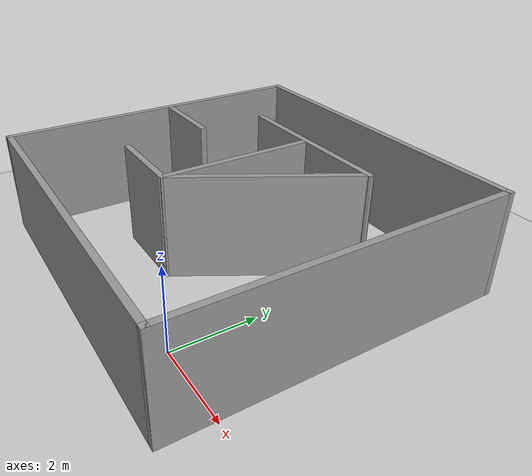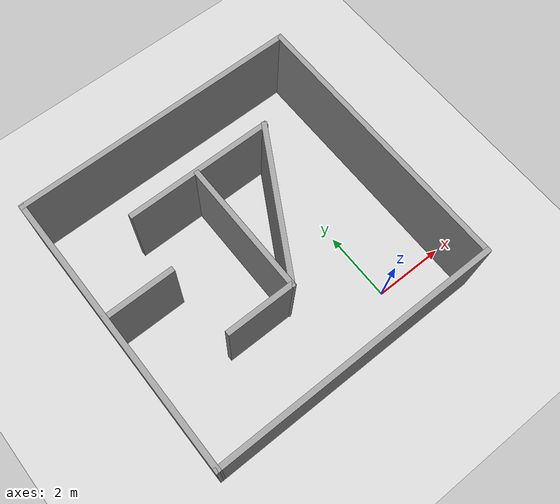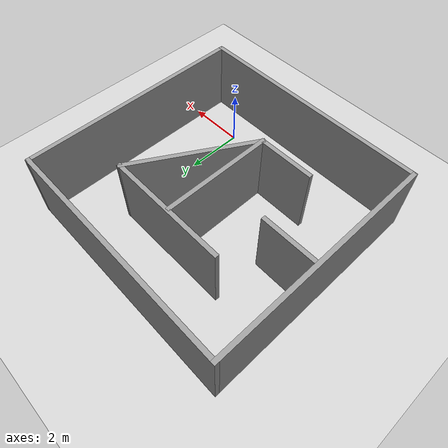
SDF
<sdf version="1.7">
 <world name="default">
  <light name="sun" type="directional">
   <pose>0 0 10 0 -0 0</pose>
   <diffuse>0.8 0.8 0.8 1</diffuse>
   <specular>0.2 0.2 0.2 1</specular>
   <attenuation>
    <range>1000</range>
    <constant>0.9</constant>
    <linear>0.01</linear>
    <quadratic>0.001</quadratic>
   </attenuation>
   <direction>-0.5 0.1 -0.9</direction>
   <spot><inner_angle>0</inner_angle><outer_angle>0</outer_angle><falloff>0</falloff></spot>
  </light>
  <model name="ground_plane">
   <static>1</static>
   <link name="link">
    <collision name="collision">
     <geometry><plane><normal>0 0 1</normal><size>100 100</size></plane></geometry>
     <surface>
      <contact><collide_bitmask>65535</collide_bitmask></contact>
      <friction><ode><mu>100</mu><mu2>50</mu2></ode></friction>
     </surface>
    </collision>
    <visual name="visual">
     <cast_shadows>0</cast_shadows>
     <geometry><plane><normal>0 0 1</normal><size>100 100</size></plane></geometry>
     <material>
      <script><uri>file://media/materials/scripts/gazebo.material</uri><name>Gazebo/Grey</name></script>
     </material>
    </visual>
   </link>
  </model>
  <gravity>0 0 -9.8</gravity>
  <magnetic_field>6e-06 2.3e-05 -4.2e-05</magnetic_field>
  <atmosphere type="adiabatic"/>
  <physics type="ode">
   <max_step_size>0.003</max_step_size>
   <real_time_factor>1</real_time_factor>
   <real_time_update_rate>1000</real_time_update_rate>
  </physics>
  <scene><ambient>0.4 0.4 0.4 1</ambient><background>0.7 0.7 0.7 1</background><shadows>1</shadows></scene>
  <spherical_coordinates>
   <surface_model>EARTH_WGS84</surface_model>
   <latitude_deg>0</latitude_deg>
   <longitude_deg>0</longitude_deg>
   <elevation>0</elevation>
   <heading_deg>0</heading_deg>
  </spherical_coordinates>
  <model name="placed_19_2">
   <pose>-2.19877 2.82374 0 0 -0 0</pose>
   <link name="Wall_0">
    <collision name="Wall_0_Collision">
     <geometry><box><size>8.25 0.15 2.5</size></box></geometry>
     <pose>0 0 1.25 0 -0 0</pose>
    </collision>
    <visual name="Wall_0_Visual">
     <pose>0 0 1.25 0 -0 0</pose>
     <geometry><box><size>8.25 0.15 2.5</size></box></geometry>
     <material>
      <script><uri>file://media/materials/scripts/gazebo.material</uri><name>Gazebo/Grey</name></script>
      <ambient>1 1 1 1</ambient>
     </material>
     <meta><layer>0</layer></meta>
    </visual>
    <pose>0 -3.925 0 0 -0 0</pose>
   </link>
   <link name="Wall_1">
    <collision name="Wall_1_Collision">
     <geometry><box><size>8 0.15 2.5</size></box></geometry>
     <pose>0 0 1.25 0 -0 0</pose>
    </collision>
    <visual name="Wall_1_Visual">
     <pose>0 0 1.25 0 -0 0</pose>
     <geometry><box><size>8 0.15 2.5</size></box></geometry>
     <material>
      <script><uri>file://media/materials/scripts/gazebo.material</uri><name>Gazebo/Grey</name></script>
      <ambient>1 1 1 1</ambient>
     </material>
     <meta><layer>0</layer></meta>
    </visual>
    <pose>4.05 0 0 0 -0 1.5708</pose>
   </link>
   <link name="Wall_12">
    <collision name="Wall_12_Collision">
     <geometry><box><size>3.852 0.15 2.5</size></box></geometry>
     <pose>0 0 1.25 0 -0 0</pose>
    </collision>
    <visual name="Wall_12_Visual">
     <pose>0 0 1.25 0 -0 0</pose>
     <geometry><box><size>3.852 0.15 2.5</size></box></geometry>
     <material>
      <script><uri>file://media/materials/scripts/gazebo.material</uri><name>Gazebo/Grey</name></script>
      <ambient>1 1 1 1</ambient>
     </material>
     <meta><layer>0</layer></meta>
    </visual>
    <pose>-0.146094 0.156878 0 0 -0 1.5708</pose>
   </link>
   <link name="Wall_2">
    <collision name="Wall_2_Collision">
     <geometry><box><size>8.25 0.15 2.5</size></box></geometry>
     <pose>0 0 1.25 0 -0 0</pose>
    </collision>
    <visual name="Wall_2_Visual">
     <pose>0 0 1.25 0 -0 0</pose>
     <geometry><box><size>8.25 0.15 2.5</size></box></geometry>
     <material>
      <script><uri>file://media/materials/scripts/gazebo.material</uri><name>Gazebo/Grey</name></script>
      <ambient>1 1 1 1</ambient>
     </material>
     <meta><layer>0</layer></meta>
    </visual>
    <pose>0 3.925 0 0 -0 3.14159</pose>
   </link>
   <link name="Wall_3">
    <collision name="Wall_3_Collision">
     <geometry><box><size>8 0.15 2.5</size></box></geometry>
     <pose>0 0 1.25 0 -0 0</pose>
    </collision>
    <visual name="Wall_3_Visual">
     <pose>0 0 1.25 0 -0 0</pose>
     <geometry><box><size>8 0.15 2.5</size></box></geometry>
     <material>
      <script><uri>file://media/materials/scripts/gazebo.material</uri><name>Gazebo/Grey</name></script>
      <ambient>1 1 1 1</ambient>
     </material>
     <meta><layer>0</layer></meta>
    </visual>
    <pose>-4.05 0 0 0 -0 -1.5708</pose>
   </link>
   <link name="Wall_5">
    <collision name="Wall_5_Collision">
     <geometry><box><size>2 0.15 2.5</size></box></geometry>
     <pose>0 0 1.25 0 -0 0</pose>
    </collision>
    <visual name="Wall_5_Visual">
     <pose>0 0 1.25 0 -0 0</pose>
     <geometry><box><size>2 0.15 2.5</size></box></geometry>
     <material>
      <script><uri>file://media/materials/scripts/gazebo.material</uri><name>Gazebo/Grey</name></script>
      <ambient>1 1 1 1</ambient>
     </material>
     <meta><layer>0</layer></meta>
    </visual>
    <pose>-3.09711 0.343322 0 0 -0 0</pose>
   </link>
   <link name="Wall_7">
    <collision name="Wall_7_Collision">
     <geometry><box><size>4.25 0.15 2.5</size></box></geometry>
     <pose>0 0 1.25 0 -0 0</pose>
    </collision>
    <visual name="Wall_7_Visual">
     <pose>0 0 1.25 0 -0 0</pose>
     <geometry><box><size>4.25 0.15 2.5</size></box></geometry>
     <material>
      <script><uri>file://media/materials/scripts/gazebo.material</uri><name>Gazebo/Grey</name></script>
      <ambient>1 1 1 1</ambient>
     </material>
     <meta><layer>0</layer></meta>
    </visual>
    <pose>-0.021094 2.07309 0 0 -0 0</pose>
   </link>
   <link name="Wall_8">
    <collision name="Wall_8_Collision">
     <geometry><box><size>4.5 0.15 2.5</size></box></geometry>
     <pose>0 0 1.25 0 -0 0</pose>
    </collision>
    <visual name="Wall_8_Visual">
     <pose>0 0 1.25 0 -0 0</pose>
     <geometry><box><size>4.5 0.15 2.5</size></box></geometry>
     <material>
      <script><uri>file://media/materials/scripts/gazebo.material</uri><name>Gazebo/Grey</name></script>
      <ambient>1 1 1 1</ambient>
     </material>
     <meta><layer>0</layer></meta>
    </visual>
    <pose>0.941406 0.189483 0 0 -0 -2.0944</pose>
   </link>
   <link name="Wall_9">
    <collision name="Wall_9_Collision">
     <geometry><box><size>2 0.15 2.5</size></box></geometry>
     <pose>0 0 1.25 0 -0 0</pose>
    </collision>
    <visual name="Wall_9_Visual">
     <pose>0 0 1.25 0 -0 0</pose>
     <geometry><box><size>2 0.15 2.5</size></box></geometry>
     <material>
      <script><uri>file://media/materials/scripts/gazebo.material</uri><name>Gazebo/Grey</name></script>
      <ambient>1 1 1 1</ambient>
     </material>
     <meta><layer>0</layer></meta>
    </visual>
    <pose>-1.07109 -1.69412 0 0 -0 3.14159</pose>
   </link>
   <static>1</static>
  </model>
 </world>
</sdf>
